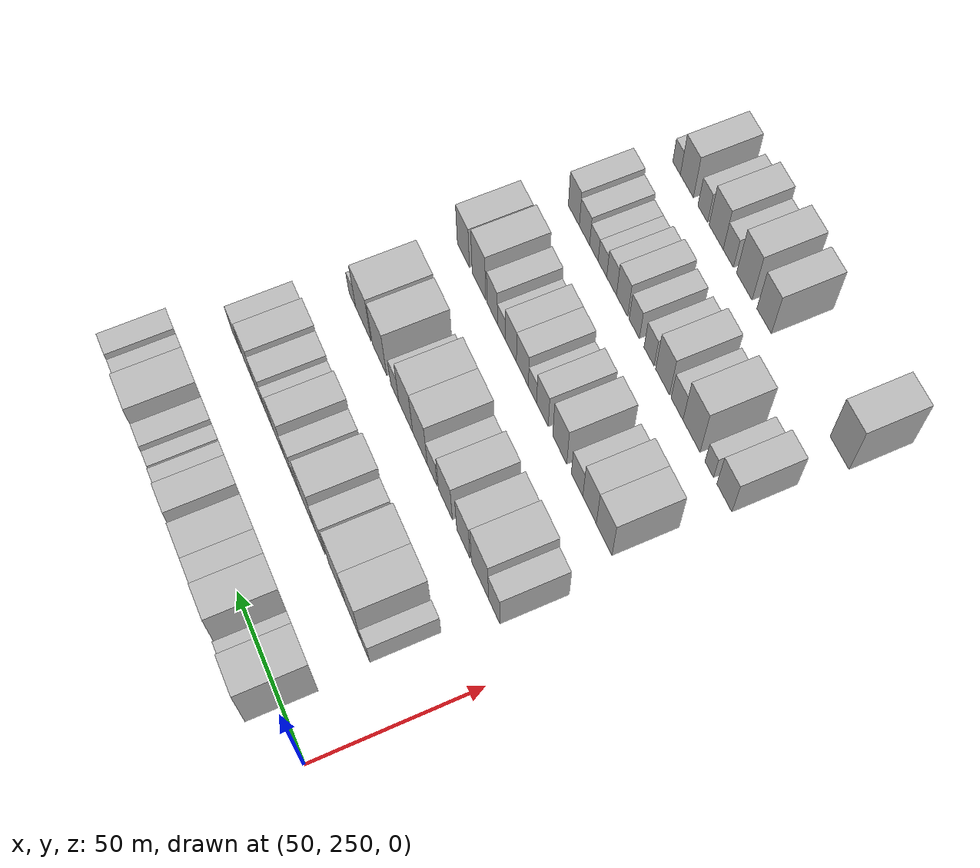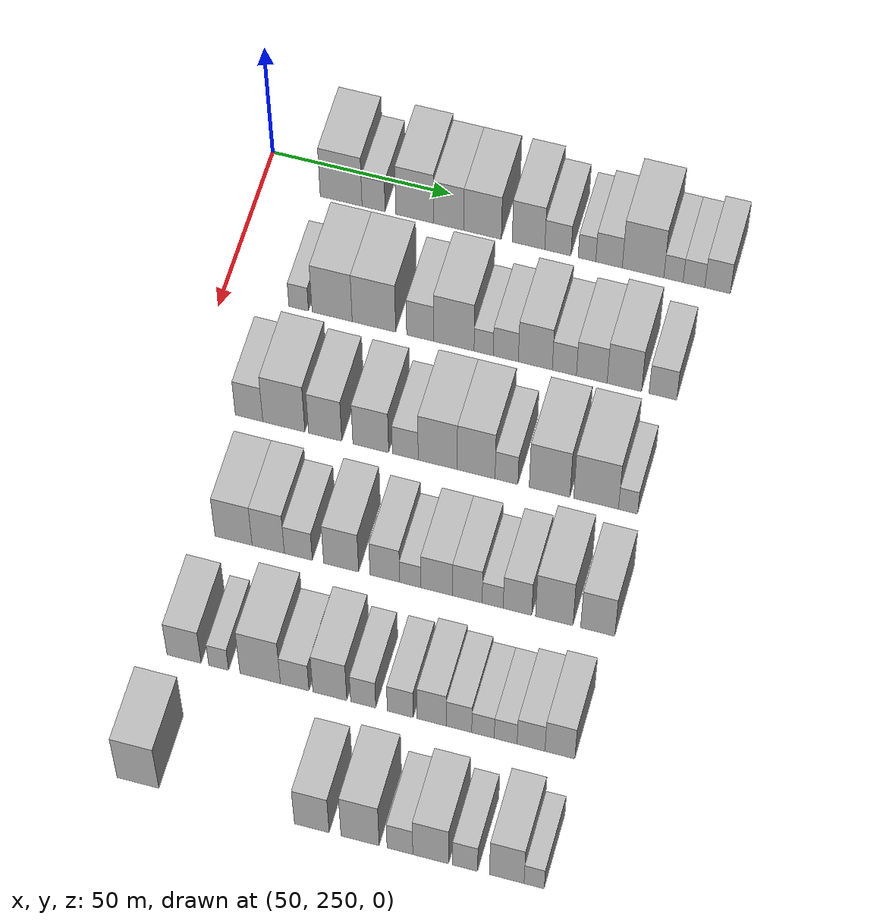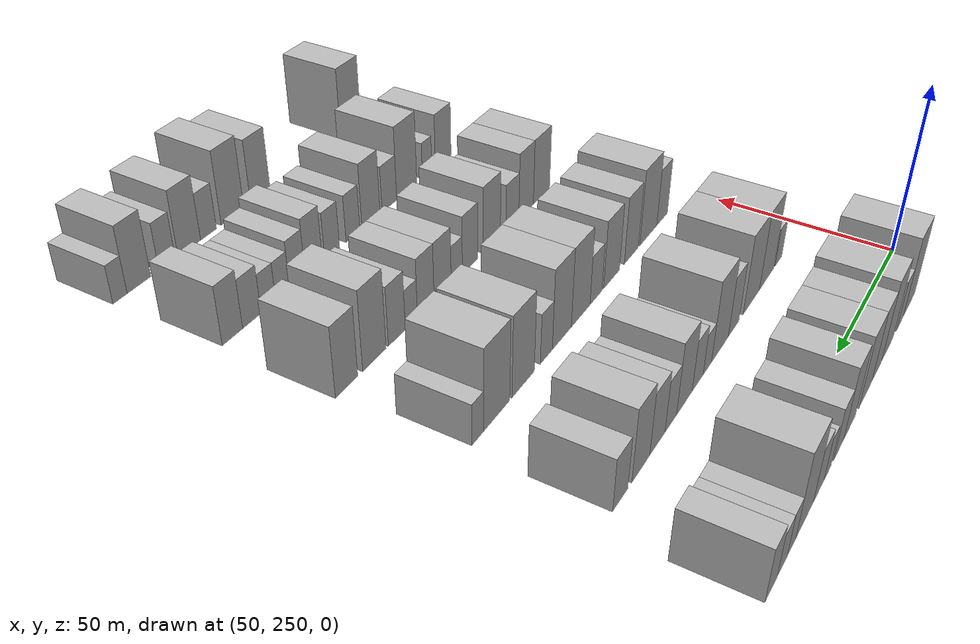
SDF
<sdf version="1.6">
 <world name="default">
  <model name="building_87">
   <static>1</static>
   <pose>50.0000 272.2284 0 0.000000 0.000000 0.000000</pose>
   <link name="link">
    <pose>0 0 12.00 0 0 0</pose>
    <collision name="collision"><geometry><box><size>20.0000 11.6998 24.0000</size></box></geometry></collision>
    <visual name="visual">
     <cast_shadows>0</cast_shadows>
     <geometry><box><size>20.0000 11.6998 24.0000</size></box></geometry>
     <material>
      <script>
       <uri>model://HANNAS_wall/materials/scripts</uri>
       <uri>model://HANNAS_wall/materials/textures</uri>
       <name>vrc/HANNAS_wall</name>
      </script>
     </material>
    </visual>
   </link>
  </model>
  <model name="building_88">
   <static>1</static>
   <pose>50.0000 281.3055 0 0.000000 0.000000 0.000000</pose>
   <link name="link">
    <pose>0 0 7.50 0 0 0</pose>
    <collision name="collision"><geometry><box><size>20.0000 6.4543 15.0000</size></box></geometry></collision>
    <visual name="visual">
     <cast_shadows>0</cast_shadows>
     <geometry><box><size>20.0000 6.4543 15.0000</size></box></geometry>
     <material>
      <script>
       <uri>model://HANNAS_wall/materials/scripts</uri>
       <uri>model://HANNAS_wall/materials/textures</uri>
       <name>vrc/HANNAS_wall</name>
      </script>
     </material>
    </visual>
   </link>
  </model>
  <model name="building_89">
   <static>1</static>
   <pose>50.0000 292.7770 0 0.000000 0.000000 0.000000</pose>
   <link name="link">
    <pose>0 0 12.00 0 0 0</pose>
    <collision name="collision"><geometry><box><size>20.0000 10.4887 24.0000</size></box></geometry></collision>
    <visual name="visual">
     <cast_shadows>0</cast_shadows>
     <geometry><box><size>20.0000 10.4887 24.0000</size></box></geometry>
     <material>
      <script>
       <uri>model://HANNAS_wall/materials/scripts</uri>
       <uri>model://HANNAS_wall/materials/textures</uri>
       <name>vrc/HANNAS_wall</name>
      </script>
     </material>
    </visual>
   </link>
  </model>
  <model name="building_90">
   <static>1</static>
   <pose>50.0000 302.2360 0 0.000000 0.000000 0.000000</pose>
   <link name="link">
    <pose>0 0 10.50 0 0 0</pose>
    <collision name="collision"><geometry><box><size>20.0000 8.4294 21.0000</size></box></geometry></collision>
    <visual name="visual">
     <cast_shadows>0</cast_shadows>
     <geometry><box><size>20.0000 8.4294 21.0000</size></box></geometry>
     <material>
      <script>
       <uri>model://HANNAS_wall/materials/scripts</uri>
       <uri>model://HANNAS_wall/materials/textures</uri>
       <name>vrc/HANNAS_wall</name>
      </script>
     </material>
    </visual>
   </link>
  </model>
  <model name="building_91">
   <static>1</static>
   <pose>50.0000 311.6519 0 0.000000 0.000000 0.000000</pose>
   <link name="link">
    <pose>0 0 10.50 0 0 0</pose>
    <collision name="collision"><geometry><box><size>20.0000 10.4023 21.0000</size></box></geometry></collision>
    <visual name="visual">
     <cast_shadows>0</cast_shadows>
     <geometry><box><size>20.0000 10.4023 21.0000</size></box></geometry>
     <material>
      <script>
       <uri>model://HANNAS_wall/materials/scripts</uri>
       <uri>model://HANNAS_wall/materials/textures</uri>
       <name>vrc/HANNAS_wall</name>
      </script>
     </material>
    </visual>
   </link>
  </model>
  <model name="building_92">
   <static>1</static>
   <pose>50.0000 324.3570 0 0.000000 0.000000 0.000000</pose>
   <link name="link">
    <pose>0 0 10.50 0 0 0</pose>
    <collision name="collision"><geometry><box><size>20.0000 9.0078 21.0000</size></box></geometry></collision>
    <visual name="visual">
     <cast_shadows>0</cast_shadows>
     <geometry><box><size>20.0000 9.0078 21.0000</size></box></geometry>
     <material>
      <script>
       <uri>model://HANNAS_wall/materials/scripts</uri>
       <uri>model://HANNAS_wall/materials/textures</uri>
       <name>vrc/HANNAS_wall</name>
      </script>
     </material>
    </visual>
   </link>
  </model>
  <model name="building_93">
   <static>1</static>
   <pose>50.0000 332.4698 0 0.000000 0.000000 0.000000</pose>
   <link name="link">
    <pose>0 0 7.50 0 0 0</pose>
    <collision name="collision"><geometry><box><size>20.0000 7.2178 15.0000</size></box></geometry></collision>
    <visual name="visual">
     <cast_shadows>0</cast_shadows>
     <geometry><box><size>20.0000 7.2178 15.0000</size></box></geometry>
     <material>
      <script>
       <uri>model://HANNAS_wall/materials/scripts</uri>
       <uri>model://HANNAS_wall/materials/textures</uri>
       <name>vrc/HANNAS_wall</name>
      </script>
     </material>
    </visual>
   </link>
  </model>
  <model name="building_94">
   <static>1</static>
   <pose>50.0000 340.5006 0 0.000000 0.000000 0.000000</pose>
   <link name="link">
    <pose>0 0 6.00 0 0 0</pose>
    <collision name="collision"><geometry><box><size>20.0000 4.8438 12.0000</size></box></geometry></collision>
    <visual name="visual">
     <cast_shadows>0</cast_shadows>
     <geometry><box><size>20.0000 4.8438 12.0000</size></box></geometry>
     <material>
      <script>
       <uri>model://HANNAS_wall/materials/scripts</uri>
       <uri>model://HANNAS_wall/materials/textures</uri>
       <name>vrc/HANNAS_wall</name>
      </script>
     </material>
    </visual>
   </link>
  </model>
  <model name="building_95">
   <static>1</static>
   <pose>50.0000 346.5561 0 0.000000 0.000000 0.000000</pose>
   <link name="link">
    <pose>0 0 7.50 0 0 0</pose>
    <collision name="collision"><geometry><box><size>20.0000 7.2672 15.0000</size></box></geometry></collision>
    <visual name="visual">
     <cast_shadows>0</cast_shadows>
     <geometry><box><size>20.0000 7.2672 15.0000</size></box></geometry>
     <material>
      <script>
       <uri>model://HANNAS_wall/materials/scripts</uri>
       <uri>model://HANNAS_wall/materials/textures</uri>
       <name>vrc/HANNAS_wall</name>
      </script>
     </material>
    </visual>
   </link>
  </model>
  <model name="building_96">
   <static>1</static>
   <pose>50.0000 355.8929 0 0.000000 0.000000 0.000000</pose>
   <link name="link">
    <pose>0 0 12.00 0 0 0</pose>
    <collision name="collision"><geometry><box><size>20.0000 11.4063 24.0000</size></box></geometry></collision>
    <visual name="visual">
     <cast_shadows>0</cast_shadows>
     <geometry><box><size>20.0000 11.4063 24.0000</size></box></geometry>
     <material>
      <script>
       <uri>model://HANNAS_wall/materials/scripts</uri>
       <uri>model://HANNAS_wall/materials/textures</uri>
       <name>vrc/HANNAS_wall</name>
      </script>
     </material>
    </visual>
   </link>
  </model>
  <model name="building_97">
   <static>1</static>
   <pose>50.0000 364.2246 0 0.000000 0.000000 0.000000</pose>
   <link name="link">
    <pose>0 0 6.00 0 0 0</pose>
    <collision name="collision"><geometry><box><size>20.0000 5.2571 12.0000</size></box></geometry></collision>
    <visual name="visual">
     <cast_shadows>0</cast_shadows>
     <geometry><box><size>20.0000 5.2571 12.0000</size></box></geometry>
     <material>
      <script>
       <uri>model://HANNAS_wall/materials/scripts</uri>
       <uri>model://HANNAS_wall/materials/textures</uri>
       <name>vrc/HANNAS_wall</name>
      </script>
     </material>
    </visual>
   </link>
  </model>
  <model name="building_98">
   <static>1</static>
   <pose>50.0000 369.8206 0 0.000000 0.000000 0.000000</pose>
   <link name="link">
    <pose>0 0 6.00 0 0 0</pose>
    <collision name="collision"><geometry><box><size>20.0000 5.9349 12.0000</size></box></geometry></collision>
    <visual name="visual">
     <cast_shadows>0</cast_shadows>
     <geometry><box><size>20.0000 5.9349 12.0000</size></box></geometry>
     <material>
      <script>
       <uri>model://HANNAS_wall/materials/scripts</uri>
       <uri>model://HANNAS_wall/materials/textures</uri>
       <name>vrc/HANNAS_wall</name>
      </script>
     </material>
    </visual>
   </link>
  </model>
  <model name="building_99">
   <static>1</static>
   <pose>50.0000 376.2806 0 0.000000 0.000000 0.000000</pose>
   <link name="link">
    <pose>0 0 7.50 0 0 0</pose>
    <collision name="collision"><geometry><box><size>20.0000 6.9851 15.0000</size></box></geometry></collision>
    <visual name="visual">
     <cast_shadows>0</cast_shadows>
     <geometry><box><size>20.0000 6.9851 15.0000</size></box></geometry>
     <material>
      <script>
       <uri>model://HANNAS_wall/materials/scripts</uri>
       <uri>model://HANNAS_wall/materials/textures</uri>
       <name>vrc/HANNAS_wall</name>
      </script>
     </material>
    </visual>
   </link>
  </model>
  <model name="building_215">
   <static>1</static>
   <pose>85.0000 270.7608 0 0.000000 0.000000 0.000000</pose>
   <link name="link">
    <pose>0 0 6.00 0 0 0</pose>
    <collision name="collision"><geometry><box><size>20.0000 5.4022 12.0000</size></box></geometry></collision>
    <visual name="visual">
     <cast_shadows>0</cast_shadows>
     <geometry><box><size>20.0000 5.4022 12.0000</size></box></geometry>
     <material>
      <script>
       <uri>model://HANNAS_wall/materials/scripts</uri>
       <uri>model://HANNAS_wall/materials/textures</uri>
       <name>vrc/HANNAS_wall</name>
      </script>
     </material>
    </visual>
   </link>
  </model>
  <model name="building_216">
   <static>1</static>
   <pose>85.0000 279.9823 0 0.000000 0.000000 0.000000</pose>
   <link name="link">
    <pose>0 0 12.00 0 0 0</pose>
    <collision name="collision"><geometry><box><size>20.0000 11.0408 24.0000</size></box></geometry></collision>
    <visual name="visual">
     <cast_shadows>0</cast_shadows>
     <geometry><box><size>20.0000 11.0408 24.0000</size></box></geometry>
     <material>
      <script>
       <uri>model://HANNAS_wall/materials/scripts</uri>
       <uri>model://HANNAS_wall/materials/textures</uri>
       <name>vrc/HANNAS_wall</name>
      </script>
     </material>
    </visual>
   </link>
  </model>
  <model name="building_217">
   <static>1</static>
   <pose>85.0000 291.4769 0 0.000000 0.000000 0.000000</pose>
   <link name="link">
    <pose>0 0 12.00 0 0 0</pose>
    <collision name="collision"><geometry><box><size>20.0000 11.9483 24.0000</size></box></geometry></collision>
    <visual name="visual">
     <cast_shadows>0</cast_shadows>
     <geometry><box><size>20.0000 11.9483 24.0000</size></box></geometry>
     <material>
      <script>
       <uri>model://HANNAS_wall/materials/scripts</uri>
       <uri>model://HANNAS_wall/materials/textures</uri>
       <name>vrc/HANNAS_wall</name>
      </script>
     </material>
    </visual>
   </link>
  </model>
  <model name="building_218">
   <static>1</static>
   <pose>85.0000 304.1156 0 0.000000 0.000000 0.000000</pose>
   <link name="link">
    <pose>0 0 9.00 0 0 0</pose>
    <collision name="collision"><geometry><box><size>20.0000 7.3292 18.0000</size></box></geometry></collision>
    <visual name="visual">
     <cast_shadows>0</cast_shadows>
     <geometry><box><size>20.0000 7.3292 18.0000</size></box></geometry>
     <material>
      <script>
       <uri>model://HANNAS_wall/materials/scripts</uri>
       <uri>model://HANNAS_wall/materials/textures</uri>
       <name>vrc/HANNAS_wall</name>
      </script>
     </material>
    </visual>
   </link>
  </model>
  <model name="building_219">
   <static>1</static>
   <pose>85.0000 313.3155 0 0.000000 0.000000 0.000000</pose>
   <link name="link">
    <pose>0 0 12.00 0 0 0</pose>
    <collision name="collision"><geometry><box><size>20.0000 11.0707 24.0000</size></box></geometry></collision>
    <visual name="visual">
     <cast_shadows>0</cast_shadows>
     <geometry><box><size>20.0000 11.0707 24.0000</size></box></geometry>
     <material>
      <script>
       <uri>model://HANNAS_wall/materials/scripts</uri>
       <uri>model://HANNAS_wall/materials/textures</uri>
       <name>vrc/HANNAS_wall</name>
      </script>
     </material>
    </visual>
   </link>
  </model>
  <model name="building_220">
   <static>1</static>
   <pose>85.0000 321.4698 0 0.000000 0.000000 0.000000</pose>
   <link name="link">
    <pose>0 0 6.00 0 0 0</pose>
    <collision name="collision"><geometry><box><size>20.0000 5.2379 12.0000</size></box></geometry></collision>
    <visual name="visual">
     <cast_shadows>0</cast_shadows>
     <geometry><box><size>20.0000 5.2379 12.0000</size></box></geometry>
     <material>
      <script>
       <uri>model://HANNAS_wall/materials/scripts</uri>
       <uri>model://HANNAS_wall/materials/textures</uri>
       <name>vrc/HANNAS_wall</name>
      </script>
     </material>
    </visual>
   </link>
  </model>
  <model name="building_221">
   <static>1</static>
   <pose>85.0000 327.4921 0 0.000000 0.000000 0.000000</pose>
   <link name="link">
    <pose>0 0 7.50 0 0 0</pose>
    <collision name="collision"><geometry><box><size>20.0000 6.8066 15.0000</size></box></geometry></collision>
    <visual name="visual">
     <cast_shadows>0</cast_shadows>
     <geometry><box><size>20.0000 6.8066 15.0000</size></box></geometry>
     <material>
      <script>
       <uri>model://HANNAS_wall/materials/scripts</uri>
       <uri>model://HANNAS_wall/materials/textures</uri>
       <name>vrc/HANNAS_wall</name>
      </script>
     </material>
    </visual>
   </link>
  </model>
  <model name="building_222">
   <static>1</static>
   <pose>85.0000 335.4979 0 0.000000 0.000000 0.000000</pose>
   <link name="link">
    <pose>0 0 10.50 0 0 0</pose>
    <collision name="collision"><geometry><box><size>20.0000 9.2051 21.0000</size></box></geometry></collision>
    <visual name="visual">
     <cast_shadows>0</cast_shadows>
     <geometry><box><size>20.0000 9.2051 21.0000</size></box></geometry>
     <material>
      <script>
       <uri>model://HANNAS_wall/materials/scripts</uri>
       <uri>model://HANNAS_wall/materials/textures</uri>
       <name>vrc/HANNAS_wall</name>
      </script>
     </material>
    </visual>
   </link>
  </model>
  <model name="building_223">
   <static>1</static>
   <pose>85.0000 343.3695 0 0.000000 0.000000 0.000000</pose>
   <link name="link">
    <pose>0 0 7.50 0 0 0</pose>
    <collision name="collision"><geometry><box><size>20.0000 6.5382 15.0000</size></box></geometry></collision>
    <visual name="visual">
     <cast_shadows>0</cast_shadows>
     <geometry><box><size>20.0000 6.5382 15.0000</size></box></geometry>
     <material>
      <script>
       <uri>model://HANNAS_wall/materials/scripts</uri>
       <uri>model://HANNAS_wall/materials/textures</uri>
       <name>vrc/HANNAS_wall</name>
      </script>
     </material>
    </visual>
   </link>
  </model>
  <model name="building_224">
   <static>1</static>
   <pose>85.0000 350.7848 0 0.000000 0.000000 0.000000</pose>
   <link name="link">
    <pose>0 0 9.00 0 0 0</pose>
    <collision name="collision"><geometry><box><size>20.0000 8.2924 18.0000</size></box></geometry></collision>
    <visual name="visual">
     <cast_shadows>0</cast_shadows>
     <geometry><box><size>20.0000 8.2924 18.0000</size></box></geometry>
     <material>
      <script>
       <uri>model://HANNAS_wall/materials/scripts</uri>
       <uri>model://HANNAS_wall/materials/textures</uri>
       <name>vrc/HANNAS_wall</name>
      </script>
     </material>
    </visual>
   </link>
  </model>
  <model name="building_225">
   <static>1</static>
   <pose>85.0000 359.5851 0 0.000000 0.000000 0.000000</pose>
   <link name="link">
    <pose>0 0 10.50 0 0 0</pose>
    <collision name="collision"><geometry><box><size>20.0000 9.3082 21.0000</size></box></geometry></collision>
    <visual name="visual">
     <cast_shadows>0</cast_shadows>
     <geometry><box><size>20.0000 9.3082 21.0000</size></box></geometry>
     <material>
      <script>
       <uri>model://HANNAS_wall/materials/scripts</uri>
       <uri>model://HANNAS_wall/materials/textures</uri>
       <name>vrc/HANNAS_wall</name>
      </script>
     </material>
    </visual>
   </link>
  </model>
  <model name="building_226">
   <static>1</static>
   <pose>85.0000 369.9700 0 0.000000 0.000000 0.000000</pose>
   <link name="link">
    <pose>0 0 7.50 0 0 0</pose>
    <collision name="collision"><geometry><box><size>20.0000 7.4617 15.0000</size></box></geometry></collision>
    <visual name="visual">
     <cast_shadows>0</cast_shadows>
     <geometry><box><size>20.0000 7.4617 15.0000</size></box></geometry>
     <material>
      <script>
       <uri>model://HANNAS_wall/materials/scripts</uri>
       <uri>model://HANNAS_wall/materials/textures</uri>
       <name>vrc/HANNAS_wall</name>
      </script>
     </material>
    </visual>
   </link>
  </model>
  <model name="building_343">
   <static>1</static>
   <pose>120.0000 267.7276 0 0.000000 0.000000 0.000000</pose>
   <link name="link">
    <pose>0 0 9.00 0 0 0</pose>
    <collision name="collision"><geometry><box><size>20.0000 7.4659 18.0000</size></box></geometry></collision>
    <visual name="visual">
     <cast_shadows>0</cast_shadows>
     <geometry><box><size>20.0000 7.4659 18.0000</size></box></geometry>
     <material>
      <script>
       <uri>model://HANNAS_wall/materials/scripts</uri>
       <uri>model://HANNAS_wall/materials/textures</uri>
       <name>vrc/HANNAS_wall</name>
      </script>
     </material>
    </visual>
   </link>
  </model>
  <model name="building_344">
   <static>1</static>
   <pose>120.0000 277.1764 0 0.000000 0.000000 0.000000</pose>
   <link name="link">
    <pose>0 0 12.00 0 0 0</pose>
    <collision name="collision"><geometry><box><size>20.0000 11.4318 24.0000</size></box></geometry></collision>
    <visual name="visual">
     <cast_shadows>0</cast_shadows>
     <geometry><box><size>20.0000 11.4318 24.0000</size></box></geometry>
     <material>
      <script>
       <uri>model://HANNAS_wall/materials/scripts</uri>
       <uri>model://HANNAS_wall/materials/textures</uri>
       <name>vrc/HANNAS_wall</name>
      </script>
     </material>
    </visual>
   </link>
  </model>
  <model name="building_345">
   <static>1</static>
   <pose>120.0000 288.3780 0 0.000000 0.000000 0.000000</pose>
   <link name="link">
    <pose>0 0 10.50 0 0 0</pose>
    <collision name="collision"><geometry><box><size>20.0000 8.9713 21.0000</size></box></geometry></collision>
    <visual name="visual">
     <cast_shadows>0</cast_shadows>
     <geometry><box><size>20.0000 8.9713 21.0000</size></box></geometry>
     <material>
      <script>
       <uri>model://HANNAS_wall/materials/scripts</uri>
       <uri>model://HANNAS_wall/materials/textures</uri>
       <name>vrc/HANNAS_wall</name>
      </script>
     </material>
    </visual>
   </link>
  </model>
  <model name="building_346">
   <static>1</static>
   <pose>120.0000 300.6865 0 0.000000 0.000000 0.000000</pose>
   <link name="link">
    <pose>0 0 10.50 0 0 0</pose>
    <collision name="collision"><geometry><box><size>20.0000 9.6457 21.0000</size></box></geometry></collision>
    <visual name="visual">
     <cast_shadows>0</cast_shadows>
     <geometry><box><size>20.0000 9.6457 21.0000</size></box></geometry>
     <material>
      <script>
       <uri>model://HANNAS_wall/materials/scripts</uri>
       <uri>model://HANNAS_wall/materials/textures</uri>
       <name>vrc/HANNAS_wall</name>
      </script>
     </material>
    </visual>
   </link>
  </model>
  <model name="building_347">
   <static>1</static>
   <pose>120.0000 309.9779 0 0.000000 0.000000 0.000000</pose>
   <link name="link">
    <pose>0 0 7.50 0 0 0</pose>
    <collision name="collision"><geometry><box><size>20.0000 6.9371 15.0000</size></box></geometry></collision>
    <visual name="visual">
     <cast_shadows>0</cast_shadows>
     <geometry><box><size>20.0000 6.9371 15.0000</size></box></geometry>
     <material>
      <script>
       <uri>model://HANNAS_wall/materials/scripts</uri>
       <uri>model://HANNAS_wall/materials/textures</uri>
       <name>vrc/HANNAS_wall</name>
      </script>
     </material>
    </visual>
   </link>
  </model>
  <model name="building_348">
   <static>1</static>
   <pose>120.0000 318.6737 0 0.000000 0.000000 0.000000</pose>
   <link name="link">
    <pose>0 0 12.00 0 0 0</pose>
    <collision name="collision"><geometry><box><size>20.0000 10.4545 24.0000</size></box></geometry></collision>
    <visual name="visual">
     <cast_shadows>0</cast_shadows>
     <geometry><box><size>20.0000 10.4545 24.0000</size></box></geometry>
     <material>
      <script>
       <uri>model://HANNAS_wall/materials/scripts</uri>
       <uri>model://HANNAS_wall/materials/textures</uri>
       <name>vrc/HANNAS_wall</name>
      </script>
     </material>
    </visual>
   </link>
  </model>
  <model name="building_349">
   <static>1</static>
   <pose>120.0000 328.9659 0 0.000000 0.000000 0.000000</pose>
   <link name="link">
    <pose>0 0 12.00 0 0 0</pose>
    <collision name="collision"><geometry><box><size>20.0000 10.1297 24.0000</size></box></geometry></collision>
    <visual name="visual">
     <cast_shadows>0</cast_shadows>
     <geometry><box><size>20.0000 10.1297 24.0000</size></box></geometry>
     <material>
      <script>
       <uri>model://HANNAS_wall/materials/scripts</uri>
       <uri>model://HANNAS_wall/materials/textures</uri>
       <name>vrc/HANNAS_wall</name>
      </script>
     </material>
    </visual>
   </link>
  </model>
  <model name="building_350">
   <static>1</static>
   <pose>120.0000 337.0902 0 0.000000 0.000000 0.000000</pose>
   <link name="link">
    <pose>0 0 7.50 0 0 0</pose>
    <collision name="collision"><geometry><box><size>20.0000 6.1191 15.0000</size></box></geometry></collision>
    <visual name="visual">
     <cast_shadows>0</cast_shadows>
     <geometry><box><size>20.0000 6.1191 15.0000</size></box></geometry>
     <material>
      <script>
       <uri>model://HANNAS_wall/materials/scripts</uri>
       <uri>model://HANNAS_wall/materials/textures</uri>
       <name>vrc/HANNAS_wall</name>
      </script>
     </material>
    </visual>
   </link>
  </model>
  <model name="building_351">
   <static>1</static>
   <pose>120.0000 348.5688 0 0.000000 0.000000 0.000000</pose>
   <link name="link">
    <pose>0 0 12.00 0 0 0</pose>
    <collision name="collision"><geometry><box><size>20.0000 10.8380 24.0000</size></box></geometry></collision>
    <visual name="visual">
     <cast_shadows>0</cast_shadows>
     <geometry><box><size>20.0000 10.8380 24.0000</size></box></geometry>
     <material>
      <script>
       <uri>model://HANNAS_wall/materials/scripts</uri>
       <uri>model://HANNAS_wall/materials/textures</uri>
       <name>vrc/HANNAS_wall</name>
      </script>
     </material>
    </visual>
   </link>
  </model>
  <model name="building_352">
   <static>1</static>
   <pose>120.0000 360.9242 0 0.000000 0.000000 0.000000</pose>
   <link name="link">
    <pose>0 0 12.00 0 0 0</pose>
    <collision name="collision"><geometry><box><size>20.0000 11.8728 24.0000</size></box></geometry></collision>
    <visual name="visual">
     <cast_shadows>0</cast_shadows>
     <geometry><box><size>20.0000 11.8728 24.0000</size></box></geometry>
     <material>
      <script>
       <uri>model://HANNAS_wall/materials/scripts</uri>
       <uri>model://HANNAS_wall/materials/textures</uri>
       <name>vrc/HANNAS_wall</name>
      </script>
     </material>
    </visual>
   </link>
  </model>
  <model name="building_353">
   <static>1</static>
   <pose>120.0000 369.3941 0 0.000000 0.000000 0.000000</pose>
   <link name="link">
    <pose>0 0 6.00 0 0 0</pose>
    <collision name="collision"><geometry><box><size>20.0000 5.0670 12.0000</size></box></geometry></collision>
    <visual name="visual">
     <cast_shadows>0</cast_shadows>
     <geometry><box><size>20.0000 5.0670 12.0000</size></box></geometry>
     <material>
      <script>
       <uri>model://HANNAS_wall/materials/scripts</uri>
       <uri>model://HANNAS_wall/materials/textures</uri>
       <name>vrc/HANNAS_wall</name>
      </script>
     </material>
    </visual>
   </link>
  </model>
  <model name="building_465">
   <static>1</static>
   <pose>155.0000 274.2720 0 0.000000 0.000000 0.000000</pose>
   <link name="link">
    <pose>0 0 10.50 0 0 0</pose>
    <collision name="collision"><geometry><box><size>20.0000 9.8883 21.0000</size></box></geometry></collision>
    <visual name="visual">
     <cast_shadows>0</cast_shadows>
     <geometry><box><size>20.0000 9.8883 21.0000</size></box></geometry>
     <material>
      <script>
       <uri>model://HANNAS_wall/materials/scripts</uri>
       <uri>model://HANNAS_wall/materials/textures</uri>
       <name>vrc/HANNAS_wall</name>
      </script>
     </material>
    </visual>
   </link>
  </model>
  <model name="building_466">
   <static>1</static>
   <pose>155.0000 283.5288 0 0.000000 0.000000 0.000000</pose>
   <link name="link">
    <pose>0 0 10.50 0 0 0</pose>
    <collision name="collision"><geometry><box><size>20.0000 8.6253 21.0000</size></box></geometry></collision>
    <visual name="visual">
     <cast_shadows>0</cast_shadows>
     <geometry><box><size>20.0000 8.6253 21.0000</size></box></geometry>
     <material>
      <script>
       <uri>model://HANNAS_wall/materials/scripts</uri>
       <uri>model://HANNAS_wall/materials/textures</uri>
       <name>vrc/HANNAS_wall</name>
      </script>
     </material>
    </visual>
   </link>
  </model>
  <model name="building_467">
   <static>1</static>
   <pose>155.0000 291.5593 0 0.000000 0.000000 0.000000</pose>
   <link name="link">
    <pose>0 0 7.50 0 0 0</pose>
    <collision name="collision"><geometry><box><size>20.0000 7.4357 15.0000</size></box></geometry></collision>
    <visual name="visual">
     <cast_shadows>0</cast_shadows>
     <geometry><box><size>20.0000 7.4357 15.0000</size></box></geometry>
     <material>
      <script>
       <uri>model://HANNAS_wall/materials/scripts</uri>
       <uri>model://HANNAS_wall/materials/textures</uri>
       <name>vrc/HANNAS_wall</name>
      </script>
     </material>
    </visual>
   </link>
  </model>
  <model name="building_468">
   <static>1</static>
   <pose>155.0000 302.9213 0 0.000000 0.000000 0.000000</pose>
   <link name="link">
    <pose>0 0 10.50 0 0 0</pose>
    <collision name="collision"><geometry><box><size>20.0000 9.2885 21.0000</size></box></geometry></collision>
    <visual name="visual">
     <cast_shadows>0</cast_shadows>
     <geometry><box><size>20.0000 9.2885 21.0000</size></box></geometry>
     <material>
      <script>
       <uri>model://HANNAS_wall/materials/scripts</uri>
       <uri>model://HANNAS_wall/materials/textures</uri>
       <name>vrc/HANNAS_wall</name>
      </script>
     </material>
    </visual>
   </link>
  </model>
  <model name="building_469">
   <static>1</static>
   <pose>155.0000 314.4900 0 0.000000 0.000000 0.000000</pose>
   <link name="link">
    <pose>0 0 9.00 0 0 0</pose>
    <collision name="collision"><geometry><box><size>20.0000 7.8488 18.0000</size></box></geometry></collision>
    <visual name="visual">
     <cast_shadows>0</cast_shadows>
     <geometry><box><size>20.0000 7.8488 18.0000</size></box></geometry>
     <material>
      <script>
       <uri>model://HANNAS_wall/materials/scripts</uri>
       <uri>model://HANNAS_wall/materials/textures</uri>
       <name>vrc/HANNAS_wall</name>
      </script>
     </material>
    </visual>
   </link>
  </model>
  <model name="building_470">
   <static>1</static>
   <pose>155.0000 321.2116 0 0.000000 0.000000 0.000000</pose>
   <link name="link">
    <pose>0 0 6.00 0 0 0</pose>
    <collision name="collision"><geometry><box><size>20.0000 5.5945 12.0000</size></box></geometry></collision>
    <visual name="visual">
     <cast_shadows>0</cast_shadows>
     <geometry><box><size>20.0000 5.5945 12.0000</size></box></geometry>
     <material>
      <script>
       <uri>model://HANNAS_wall/materials/scripts</uri>
       <uri>model://HANNAS_wall/materials/textures</uri>
       <name>vrc/HANNAS_wall</name>
      </script>
     </material>
    </visual>
   </link>
  </model>
  <model name="building_471">
   <static>1</static>
   <pose>155.0000 328.1578 0 0.000000 0.000000 0.000000</pose>
   <link name="link">
    <pose>0 0 9.00 0 0 0</pose>
    <collision name="collision"><geometry><box><size>20.0000 8.2979 18.0000</size></box></geometry></collision>
    <visual name="visual">
     <cast_shadows>0</cast_shadows>
     <geometry><box><size>20.0000 8.2979 18.0000</size></box></geometry>
     <material>
      <script>
       <uri>model://HANNAS_wall/materials/scripts</uri>
       <uri>model://HANNAS_wall/materials/textures</uri>
       <name>vrc/HANNAS_wall</name>
      </script>
     </material>
    </visual>
   </link>
  </model>
  <model name="building_472">
   <static>1</static>
   <pose>155.0000 336.2059 0 0.000000 0.000000 0.000000</pose>
   <link name="link">
    <pose>0 0 9.00 0 0 0</pose>
    <collision name="collision"><geometry><box><size>20.0000 7.7985 18.0000</size></box></geometry></collision>
    <visual name="visual">
     <cast_shadows>0</cast_shadows>
     <geometry><box><size>20.0000 7.7985 18.0000</size></box></geometry>
     <material>
      <script>
       <uri>model://HANNAS_wall/materials/scripts</uri>
       <uri>model://HANNAS_wall/materials/textures</uri>
       <name>vrc/HANNAS_wall</name>
      </script>
     </material>
    </visual>
   </link>
  </model>
  <model name="building_473">
   <static>1</static>
   <pose>155.0000 342.8658 0 0.000000 0.000000 0.000000</pose>
   <link name="link">
    <pose>0 0 6.00 0 0 0</pose>
    <collision name="collision"><geometry><box><size>20.0000 5.5212 12.0000</size></box></geometry></collision>
    <visual name="visual">
     <cast_shadows>0</cast_shadows>
     <geometry><box><size>20.0000 5.5212 12.0000</size></box></geometry>
     <material>
      <script>
       <uri>model://HANNAS_wall/materials/scripts</uri>
       <uri>model://HANNAS_wall/materials/textures</uri>
       <name>vrc/HANNAS_wall</name>
      </script>
     </material>
    </visual>
   </link>
  </model>
  <model name="building_474">
   <static>1</static>
   <pose>155.0000 349.3576 0 0.000000 0.000000 0.000000</pose>
   <link name="link">
    <pose>0 0 9.00 0 0 0</pose>
    <collision name="collision"><geometry><box><size>20.0000 7.4624 18.0000</size></box></geometry></collision>
    <visual name="visual">
     <cast_shadows>0</cast_shadows>
     <geometry><box><size>20.0000 7.4624 18.0000</size></box></geometry>
     <material>
      <script>
       <uri>model://HANNAS_wall/materials/scripts</uri>
       <uri>model://HANNAS_wall/materials/textures</uri>
       <name>vrc/HANNAS_wall</name>
      </script>
     </material>
    </visual>
   </link>
  </model>
  <model name="building_475">
   <static>1</static>
   <pose>155.0000 358.9803 0 0.000000 0.000000 0.000000</pose>
   <link name="link">
    <pose>0 0 12.00 0 0 0</pose>
    <collision name="collision"><geometry><box><size>20.0000 9.7830 24.0000</size></box></geometry></collision>
    <visual name="visual">
     <cast_shadows>0</cast_shadows>
     <geometry><box><size>20.0000 9.7830 24.0000</size></box></geometry>
     <material>
      <script>
       <uri>model://HANNAS_wall/materials/scripts</uri>
       <uri>model://HANNAS_wall/materials/textures</uri>
       <name>vrc/HANNAS_wall</name>
      </script>
     </material>
    </visual>
   </link>
  </model>
  <model name="building_476">
   <static>1</static>
   <pose>155.0000 370.3180 0 0.000000 0.000000 0.000000</pose>
   <link name="link">
    <pose>0 0 10.50 0 0 0</pose>
    <collision name="collision"><geometry><box><size>20.0000 8.8923 21.0000</size></box></geometry></collision>
    <visual name="visual">
     <cast_shadows>0</cast_shadows>
     <geometry><box><size>20.0000 8.8923 21.0000</size></box></geometry>
     <material>
      <script>
       <uri>model://HANNAS_wall/materials/scripts</uri>
       <uri>model://HANNAS_wall/materials/textures</uri>
       <name>vrc/HANNAS_wall</name>
      </script>
     </material>
    </visual>
   </link>
  </model>
  <model name="building_595">
   <static>1</static>
   <pose>190.0000 272.0421 0 0.000000 0.000000 0.000000</pose>
   <link name="link">
    <pose>0 0 9.00 0 0 0</pose>
    <collision name="collision"><geometry><box><size>20.0000 8.9849 18.0000</size></box></geometry></collision>
    <visual name="visual">
     <cast_shadows>0</cast_shadows>
     <geometry><box><size>20.0000 8.9849 18.0000</size></box></geometry>
     <material>
      <script>
       <uri>model://HANNAS_wall/materials/scripts</uri>
       <uri>model://HANNAS_wall/materials/textures</uri>
       <name>vrc/HANNAS_wall</name>
      </script>
     </material>
    </visual>
   </link>
  </model>
  <model name="building_596">
   <static>1</static>
   <pose>190.0000 281.1306 0 0.000000 0.000000 0.000000</pose>
   <link name="link">
    <pose>0 0 6.00 0 0 0</pose>
    <collision name="collision"><geometry><box><size>20.0000 5.1922 12.0000</size></box></geometry></collision>
    <visual name="visual">
     <cast_shadows>0</cast_shadows>
     <geometry><box><size>20.0000 5.1922 12.0000</size></box></geometry>
     <material>
      <script>
       <uri>model://HANNAS_wall/materials/scripts</uri>
       <uri>model://HANNAS_wall/materials/textures</uri>
       <name>vrc/HANNAS_wall</name>
      </script>
     </material>
    </visual>
   </link>
  </model>
  <model name="building_597">
   <static>1</static>
   <pose>190.0000 292.0208 0 0.000000 0.000000 0.000000</pose>
   <link name="link">
    <pose>0 0 12.00 0 0 0</pose>
    <collision name="collision"><geometry><box><size>20.0000 10.5882 24.0000</size></box></geometry></collision>
    <visual name="visual">
     <cast_shadows>0</cast_shadows>
     <geometry><box><size>20.0000 10.5882 24.0000</size></box></geometry>
     <material>
      <script>
       <uri>model://HANNAS_wall/materials/scripts</uri>
       <uri>model://HANNAS_wall/materials/textures</uri>
       <name>vrc/HANNAS_wall</name>
      </script>
     </material>
    </visual>
   </link>
  </model>
  <model name="building_598">
   <static>1</static>
   <pose>190.0000 301.0424 0 0.000000 0.000000 0.000000</pose>
   <link name="link">
    <pose>0 0 7.50 0 0 0</pose>
    <collision name="collision"><geometry><box><size>20.0000 7.4550 15.0000</size></box></geometry></collision>
    <visual name="visual">
     <cast_shadows>0</cast_shadows>
     <geometry><box><size>20.0000 7.4550 15.0000</size></box></geometry>
     <material>
      <script>
       <uri>model://HANNAS_wall/materials/scripts</uri>
       <uri>model://HANNAS_wall/materials/textures</uri>
       <name>vrc/HANNAS_wall</name>
      </script>
     </material>
    </visual>
   </link>
  </model>
  <model name="building_599">
   <static>1</static>
   <pose>190.0000 310.1970 0 0.000000 0.000000 0.000000</pose>
   <link name="link">
    <pose>0 0 10.50 0 0 0</pose>
    <collision name="collision"><geometry><box><size>20.0000 8.8542 21.0000</size></box></geometry></collision>
    <visual name="visual">
     <cast_shadows>0</cast_shadows>
     <geometry><box><size>20.0000 8.8542 21.0000</size></box></geometry>
     <material>
      <script>
       <uri>model://HANNAS_wall/materials/scripts</uri>
       <uri>model://HANNAS_wall/materials/textures</uri>
       <name>vrc/HANNAS_wall</name>
      </script>
     </material>
    </visual>
   </link>
  </model>
  <model name="building_600">
   <static>1</static>
   <pose>190.0000 318.8806 0 0.000000 0.000000 0.000000</pose>
   <link name="link">
    <pose>0 0 7.50 0 0 0</pose>
    <collision name="collision"><geometry><box><size>20.0000 6.5130 15.0000</size></box></geometry></collision>
    <visual name="visual">
     <cast_shadows>0</cast_shadows>
     <geometry><box><size>20.0000 6.5130 15.0000</size></box></geometry>
     <material>
      <script>
       <uri>model://HANNAS_wall/materials/scripts</uri>
       <uri>model://HANNAS_wall/materials/textures</uri>
       <name>vrc/HANNAS_wall</name>
      </script>
     </material>
    </visual>
   </link>
  </model>
  <model name="building_601">
   <static>1</static>
   <pose>190.0000 328.4989 0 0.000000 0.000000 0.000000</pose>
   <link name="link">
    <pose>0 0 7.50 0 0 0</pose>
    <collision name="collision"><geometry><box><size>20.0000 6.7236 15.0000</size></box></geometry></collision>
    <visual name="visual">
     <cast_shadows>0</cast_shadows>
     <geometry><box><size>20.0000 6.7236 15.0000</size></box></geometry>
     <material>
      <script>
       <uri>model://HANNAS_wall/materials/scripts</uri>
       <uri>model://HANNAS_wall/materials/textures</uri>
       <name>vrc/HANNAS_wall</name>
      </script>
     </material>
    </visual>
   </link>
  </model>
  <model name="building_602">
   <static>1</static>
   <pose>190.0000 336.6156 0 0.000000 0.000000 0.000000</pose>
   <link name="link">
    <pose>0 0 9.00 0 0 0</pose>
    <collision name="collision"><geometry><box><size>20.0000 7.5098 18.0000</size></box></geometry></collision>
    <visual name="visual">
     <cast_shadows>0</cast_shadows>
     <geometry><box><size>20.0000 7.5098 18.0000</size></box></geometry>
     <material>
      <script>
       <uri>model://HANNAS_wall/materials/scripts</uri>
       <uri>model://HANNAS_wall/materials/textures</uri>
       <name>vrc/HANNAS_wall</name>
      </script>
     </material>
    </visual>
   </link>
  </model>
  <model name="building_603">
   <static>1</static>
   <pose>190.0000 343.6591 0 0.000000 0.000000 0.000000</pose>
   <link name="link">
    <pose>0 0 7.50 0 0 0</pose>
    <collision name="collision"><geometry><box><size>20.0000 6.5773 15.0000</size></box></geometry></collision>
    <visual name="visual">
     <cast_shadows>0</cast_shadows>
     <geometry><box><size>20.0000 6.5773 15.0000</size></box></geometry>
     <material>
      <script>
       <uri>model://HANNAS_wall/materials/scripts</uri>
       <uri>model://HANNAS_wall/materials/textures</uri>
       <name>vrc/HANNAS_wall</name>
      </script>
     </material>
    </visual>
   </link>
  </model>
  <model name="building_604">
   <static>1</static>
   <pose>190.0000 349.8508 0 0.000000 0.000000 0.000000</pose>
   <link name="link">
    <pose>0 0 6.00 0 0 0</pose>
    <collision name="collision"><geometry><box><size>20.0000 5.8061 12.0000</size></box></geometry></collision>
    <visual name="visual">
     <cast_shadows>0</cast_shadows>
     <geometry><box><size>20.0000 5.8061 12.0000</size></box></geometry>
     <material>
      <script>
       <uri>model://HANNAS_wall/materials/scripts</uri>
       <uri>model://HANNAS_wall/materials/textures</uri>
       <name>vrc/HANNAS_wall</name>
      </script>
     </material>
    </visual>
   </link>
  </model>
  <model name="building_605">
   <static>1</static>
   <pose>190.0000 355.6831 0 0.000000 0.000000 0.000000</pose>
   <link name="link">
    <pose>0 0 6.00 0 0 0</pose>
    <collision name="collision"><geometry><box><size>20.0000 5.8584 12.0000</size></box></geometry></collision>
    <visual name="visual">
     <cast_shadows>0</cast_shadows>
     <geometry><box><size>20.0000 5.8584 12.0000</size></box></geometry>
     <material>
      <script>
       <uri>model://HANNAS_wall/materials/scripts</uri>
       <uri>model://HANNAS_wall/materials/textures</uri>
       <name>vrc/HANNAS_wall</name>
      </script>
     </material>
    </visual>
   </link>
  </model>
  <model name="building_606">
   <static>1</static>
   <pose>190.0000 362.1859 0 0.000000 0.000000 0.000000</pose>
   <link name="link">
    <pose>0 0 7.50 0 0 0</pose>
    <collision name="collision"><geometry><box><size>20.0000 7.1473 15.0000</size></box></geometry></collision>
    <visual name="visual">
     <cast_shadows>0</cast_shadows>
     <geometry><box><size>20.0000 7.1473 15.0000</size></box></geometry>
     <material>
      <script>
       <uri>model://HANNAS_wall/materials/scripts</uri>
       <uri>model://HANNAS_wall/materials/textures</uri>
       <name>vrc/HANNAS_wall</name>
      </script>
     </material>
    </visual>
   </link>
  </model>
  <model name="building_607">
   <static>1</static>
   <pose>190.0000 369.5980 0 0.000000 0.000000 0.000000</pose>
   <link name="link">
    <pose>0 0 9.00 0 0 0</pose>
    <collision name="collision"><geometry><box><size>20.0000 7.6768 18.0000</size></box></geometry></collision>
    <visual name="visual">
     <cast_shadows>0</cast_shadows>
     <geometry><box><size>20.0000 7.6768 18.0000</size></box></geometry>
     <material>
      <script>
       <uri>model://HANNAS_wall/materials/scripts</uri>
       <uri>model://HANNAS_wall/materials/textures</uri>
       <name>vrc/HANNAS_wall</name>
      </script>
     </material>
    </visual>
   </link>
  </model>
  <model name="building_725">
   <static>1</static>
   <pose>225.0000 271.1434 0 0.000000 0.000000 0.000000</pose>
   <link name="link">
    <pose>0 0 12.00 0 0 0</pose>
    <collision name="collision"><geometry><box><size>20.0000 10.8288 24.0000</size></box></geometry></collision>
    <visual name="visual">
     <cast_shadows>0</cast_shadows>
     <geometry><box><size>20.0000 10.8288 24.0000</size></box></geometry>
     <material>
      <script>
       <uri>model://HANNAS_wall/materials/scripts</uri>
       <uri>model://HANNAS_wall/materials/textures</uri>
       <name>vrc/HANNAS_wall</name>
      </script>
     </material>
    </visual>
   </link>
  </model>
  <model name="building_726">
   <static>1</static>
   <pose>225.0000 315.8804 0 0.000000 0.000000 0.000000</pose>
   <link name="link">
    <pose>0 0 10.50 0 0 0</pose>
    <collision name="collision"><geometry><box><size>20.0000 8.8817 21.0000</size></box></geometry></collision>
    <visual name="visual">
     <cast_shadows>0</cast_shadows>
     <geometry><box><size>20.0000 8.8817 21.0000</size></box></geometry>
     <material>
      <script>
       <uri>model://HANNAS_wall/materials/scripts</uri>
       <uri>model://HANNAS_wall/materials/textures</uri>
       <name>vrc/HANNAS_wall</name>
      </script>
     </material>
    </visual>
   </link>
  </model>
  <model name="building_727">
   <static>1</static>
   <pose>225.0000 328.1922 0 0.000000 0.000000 0.000000</pose>
   <link name="link">
    <pose>0 0 12.00 0 0 0</pose>
    <collision name="collision"><geometry><box><size>20.0000 9.7419 24.0000</size></box></geometry></collision>
    <visual name="visual">
     <cast_shadows>0</cast_shadows>
     <geometry><box><size>20.0000 9.7419 24.0000</size></box></geometry>
     <material>
      <script>
       <uri>model://HANNAS_wall/materials/scripts</uri>
       <uri>model://HANNAS_wall/materials/textures</uri>
       <name>vrc/HANNAS_wall</name>
      </script>
     </material>
    </visual>
   </link>
  </model>
  <model name="building_728">
   <static>1</static>
   <pose>225.0000 338.3350 0 0.000000 0.000000 0.000000</pose>
   <link name="link">
    <pose>0 0 7.50 0 0 0</pose>
    <collision name="collision"><geometry><box><size>20.0000 6.5438 15.0000</size></box></geometry></collision>
    <visual name="visual">
     <cast_shadows>0</cast_shadows>
     <geometry><box><size>20.0000 6.5438 15.0000</size></box></geometry>
     <material>
      <script>
       <uri>model://HANNAS_wall/materials/scripts</uri>
       <uri>model://HANNAS_wall/materials/textures</uri>
       <name>vrc/HANNAS_wall</name>
      </script>
     </material>
    </visual>
   </link>
  </model>
  <model name="building_729">
   <static>1</static>
   <pose>225.0000 346.1479 0 0.000000 0.000000 0.000000</pose>
   <link name="link">
    <pose>0 0 10.50 0 0 0</pose>
    <collision name="collision"><geometry><box><size>20.0000 9.0821 21.0000</size></box></geometry></collision>
    <visual name="visual">
     <cast_shadows>0</cast_shadows>
     <geometry><box><size>20.0000 9.0821 21.0000</size></box></geometry>
     <material>
      <script>
       <uri>model://HANNAS_wall/materials/scripts</uri>
       <uri>model://HANNAS_wall/materials/textures</uri>
       <name>vrc/HANNAS_wall</name>
      </script>
     </material>
    </visual>
   </link>
  </model>
  <model name="building_730">
   <static>1</static>
   <pose>225.0000 354.8432 0 0.000000 0.000000 0.000000</pose>
   <link name="link">
    <pose>0 0 7.50 0 0 0</pose>
    <collision name="collision"><geometry><box><size>20.0000 6.3084 15.0000</size></box></geometry></collision>
    <visual name="visual">
     <cast_shadows>0</cast_shadows>
     <geometry><box><size>20.0000 6.3084 15.0000</size></box></geometry>
     <material>
      <script>
       <uri>model://HANNAS_wall/materials/scripts</uri>
       <uri>model://HANNAS_wall/materials/textures</uri>
       <name>vrc/HANNAS_wall</name>
      </script>
     </material>
    </visual>
   </link>
  </model>
  <model name="building_731">
   <static>1</static>
   <pose>225.0000 365.3521 0 0.000000 0.000000 0.000000</pose>
   <link name="link">
    <pose>0 0 10.50 0 0 0</pose>
    <collision name="collision"><geometry><box><size>20.0000 8.7095 21.0000</size></box></geometry></collision>
    <visual name="visual">
     <cast_shadows>0</cast_shadows>
     <geometry><box><size>20.0000 8.7095 21.0000</size></box></geometry>
     <material>
      <script>
       <uri>model://HANNAS_wall/materials/scripts</uri>
       <uri>model://HANNAS_wall/materials/textures</uri>
       <name>vrc/HANNAS_wall</name>
      </script>
     </material>
    </visual>
   </link>
  </model>
  <model name="building_732">
   <static>1</static>
   <pose>225.0000 372.2521 0 0.000000 0.000000 0.000000</pose>
   <link name="link">
    <pose>0 0 6.00 0 0 0</pose>
    <collision name="collision"><geometry><box><size>20.0000 5.0904 12.0000</size></box></geometry></collision>
    <visual name="visual">
     <cast_shadows>0</cast_shadows>
     <geometry><box><size>20.0000 5.0904 12.0000</size></box></geometry>
     <material>
      <script>
       <uri>model://HANNAS_wall/materials/scripts</uri>
       <uri>model://HANNAS_wall/materials/textures</uri>
       <name>vrc/HANNAS_wall</name>
      </script>
     </material>
    </visual>
   </link>
  </model>
 </world>
</sdf>
